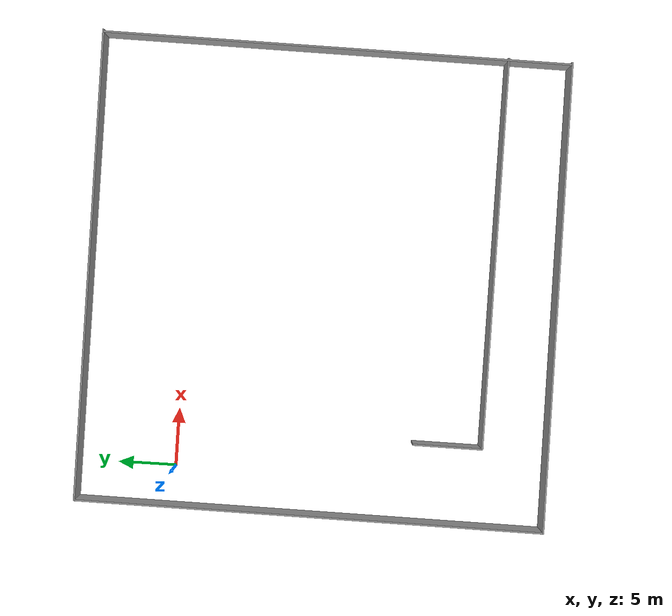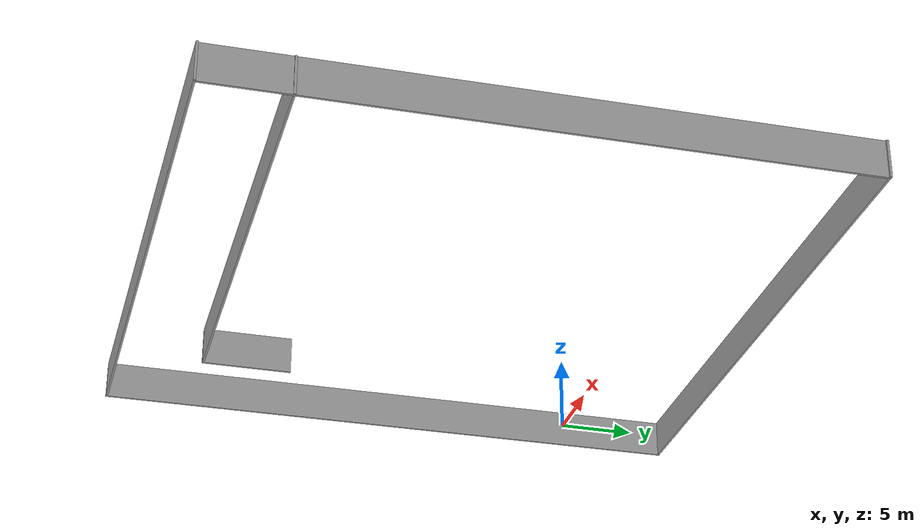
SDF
<?xml version='1.0'?>
<sdf version='1.7'>
  <model name='big_maze'>
    <pose>16.8698 -11.7042 0 0 -0 0</pose>
    <link name='Wall_0'>
      <collision name='Wall_0_Collision'>
        <geometry>
          <box>
            <size>40.3206 0.15 2.5</size>
          </box>
        </geometry>
        <pose>0 0 1.25 0 -0 0</pose>
      </collision>
      <visual name='Wall_0_Visual'>
        <pose>0 0 1.25 0 -0 0</pose>
        <geometry>
          <box>
            <size>40.3206 0.15 2.5</size>
          </box>
        </geometry>
        <material>
          <script>
            <uri>file://media/materials/scripts/gazebo.material</uri>
            <name>Gazebo/Grey</name>
          </script>
          <ambient>1 1 1 1</ambient>
        </material>
        <meta>
          <layer>0</layer>
        </meta>
      </visual>
      <pose>-0.045141 -20.058 0 0 -0 0.006161</pose>
    </link>
    <link name='Wall_1'>
      <collision name='Wall_1_Collision'>
        <geometry>
          <box>
            <size>40.266 0.15 2.5</size>
          </box>
        </geometry>
        <pose>0 0 1.25 0 -0 0</pose>
      </collision>
      <visual name='Wall_1_Visual'>
        <pose>0 0 1.25 0 -0 0</pose>
        <geometry>
          <box>
            <size>40.266 0.15 2.5</size>
          </box>
        </geometry>
        <material>
          <script>
            <uri>file://media/materials/scripts/gazebo.material</uri>
            <name>Gazebo/Grey</name>
          </script>
          <ambient>1 1 1 1</ambient>
        </material>
        <meta>
          <layer>0</layer>
        </meta>
      </visual>
      <pose>19.9612 0.123754 0 0 -0 1.56855</pose>
    </link>
    <link name='Wall_2'>
      <collision name='Wall_2_Collision'>
        <geometry>
          <box>
            <size>40.3206 0.15 2.5</size>
          </box>
        </geometry>
        <pose>0 0 1.25 0 -0 0</pose>
      </collision>
      <visual name='Wall_2_Visual'>
        <pose>0 0 1.25 0 -0 0</pose>
        <geometry>
          <box>
            <size>40.3206 0.15 2.5</size>
          </box>
        </geometry>
        <material>
          <script>
            <uri>file://media/materials/scripts/gazebo.material</uri>
            <name>Gazebo/Grey</name>
          </script>
          <ambient>1 1 1 1</ambient>
        </material>
        <meta>
          <layer>0</layer>
        </meta>
      </visual>
      <pose>0.045135 20.058 0 0 -0 -3.13543</pose>
    </link>
    <link name='Wall_3'>
      <collision name='Wall_3_Collision'>
        <geometry>
          <box>
            <size>40.2662 0.15 2.5</size>
          </box>
        </geometry>
        <pose>0 0 1.25 0 -0 0</pose>
      </collision>
      <visual name='Wall_3_Visual'>
        <pose>0 0 1.25 0 -0 0</pose>
        <geometry>
          <box>
            <size>40.2662 0.15 2.5</size>
          </box>
        </geometry>
        <material>
          <script>
            <uri>file://media/materials/scripts/gazebo.material</uri>
            <name>Gazebo/Grey</name>
          </script>
          <ambient>1 1 1 1</ambient>
        </material>
        <meta>
          <layer>0</layer>
        </meta>
      </visual>
      <pose>-20.0849 -0.123755 0 0 -0 -1.57305</pose>
    </link>
    <link name='Wall_6'>
      <collision name='Wall_6_Collision'>
        <geometry>
          <box>
            <size>33.5 0.15 2.5</size>
          </box>
        </geometry>
        <pose>0 0 1.25 0 -0 0</pose>
      </collision>
      <visual name='Wall_6_Visual'>
        <pose>0 0 1.25 0 -0 0</pose>
        <geometry>
          <box>
            <size>33.5 0.15 2.5</size>
          </box>
        </geometry>
        <material>
          <script>
            <uri>file://media/materials/scripts/gazebo.material</uri>
            <name>Gazebo/Grey</name>
          </script>
          <ambient>1 1 1 1</ambient>
        </material>
        <meta>
          <layer>0</layer>
        </meta>
      </visual>
      <pose>3.33728 -14.505 0 0 -0 3.14159</pose>
    </link>
    <link name='Wall_7'>
      <collision name='Wall_7_Collision'>
        <geometry>
          <box>
            <size>6 0.15 2.5</size>
          </box>
        </geometry>
        <pose>0 0 1.25 0 -0 0</pose>
      </collision>
      <visual name='Wall_7_Visual'>
        <pose>0 0 1.25 0 -0 0</pose>
        <geometry>
          <box>
            <size>6 0.15 2.5</size>
          </box>
        </geometry>
        <material>
          <script>
            <uri>file://media/materials/scripts/gazebo.material</uri>
            <name>Gazebo/Grey</name>
          </script>
          <ambient>1 1 1 1</ambient>
        </material>
        <meta>
          <layer>0</layer>
        </meta>
      </visual>
      <pose>-13.3377 -11.58 0 0 -0 1.5708</pose>
    </link>
    <static>1</static>
  </model>
</sdf>
